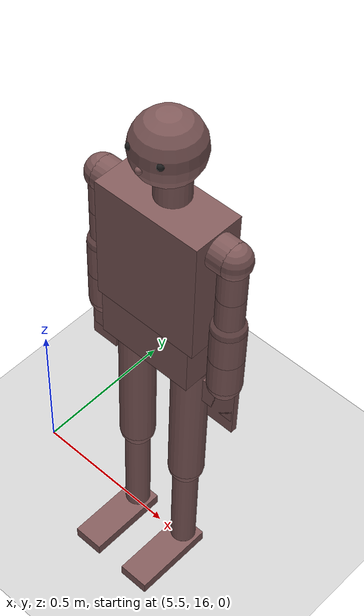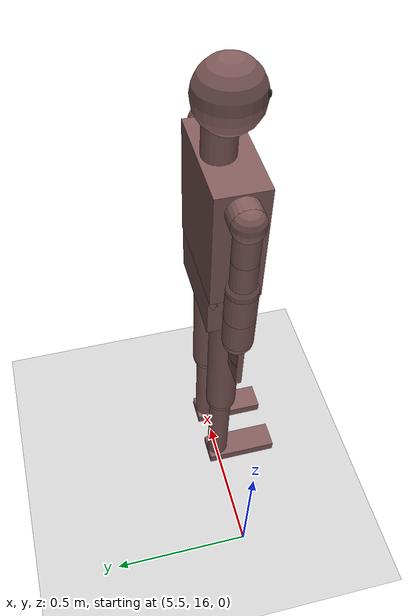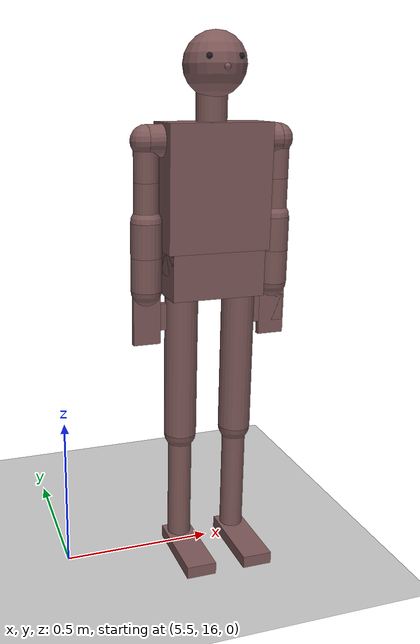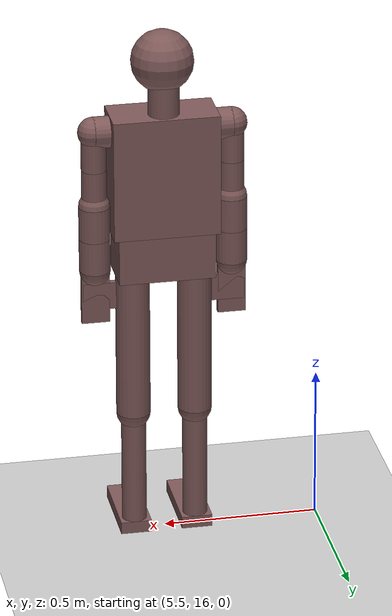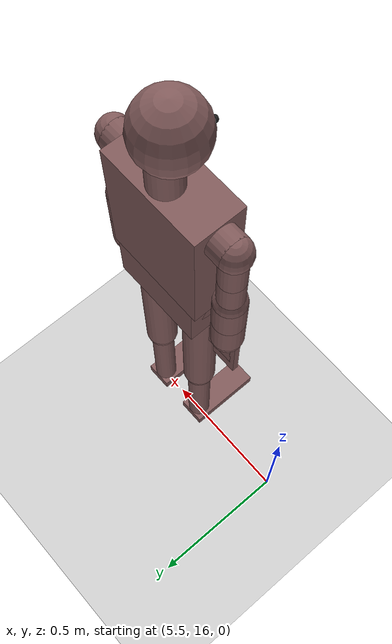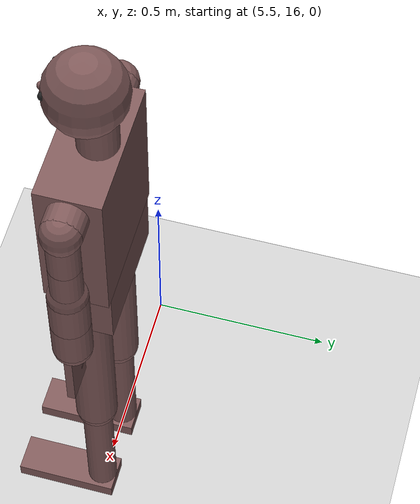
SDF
<sdf version="1.6">
 <world name="default">
  <model name="ground_plane">
   <static>1</static>
   <link name="link">
    <collision name="collision">
     <geometry><plane><normal>0 0 1</normal><size>100 100</size></plane></geometry>
     <surface><friction><ode><mu>100</mu><mu2>50</mu2></ode></friction></surface>
    </collision>
    <visual name="visual">
     <cast_shadows>0</cast_shadows>
     <geometry><plane><normal>0 0 1</normal><size>100 100</size></plane></geometry>
     <material>
      <script><uri>file://media/materials/scripts/gazebo.material</uri><name>Gazebo/Grey</name></script>
     </material>
    </visual>
   </link>
  </model>
  <model name="victim175_hot_moving_1">
   <static>1</static>
   <self_collide>1</self_collide>
   <link name="head">
    <pose>0 0 1.625 0 -0 0</pose>
    <visual name="visual">
     <geometry><sphere><radius>0.1</radius></sphere></geometry>
     <material>
      <emissive>0.5 0.35 0.35 1</emissive>
      <ambient>0.5 0.35 0.35 1</ambient>
      <diffuse>0.5 0.35 0.35 1</diffuse>
      <specular>0 0 0 0</specular>
     </material>
    </visual>
    <collision name="collision"><geometry><sphere><radius>0.1</radius></sphere></geometry></collision>
    <visual name="visual_nose">
     <pose>0 -0.1 -0.01 0 -0 0</pose>
     <geometry><sphere><radius>0.01</radius></sphere></geometry>
     <material>
      <emissive>0.5 0.35 0.35 1</emissive>
      <ambient>0.5 0.35 0.35 1</ambient>
      <diffuse>0.5 0.35 0.35 1</diffuse>
      <specular>0 0 0 0</specular>
     </material>
    </visual>
    <visual name="visual_rEye">
     <pose>-0.05 -0.08 0.02 0 -0 0</pose>
     <geometry><sphere><radius>0.01</radius></sphere></geometry>
     <material>
      <script><uri>file://media/materials/scripts/gazebo.material</uri><name>Gazebo/Black</name></script>
     </material>
    </visual>
    <visual name="visual_lEye">
     <pose>0.05 -0.08 0.02 0 -0 0</pose>
     <geometry><sphere><radius>0.01</radius></sphere></geometry>
     <material>
      <script><uri>file://media/materials/scripts/gazebo.material</uri><name>Gazebo/Black</name></script>
     </material>
    </visual>
    <self_collide>1</self_collide>
   </link>
   <link name="neck">
    <pose>0 0.02 1.49 0 -0 0</pose>
    <visual name="visual">
     <geometry><cylinder><radius>0.05</radius><length>0.15</length></cylinder></geometry>
     <material>
      <emissive>0.5 0.35 0.35 1</emissive>
      <ambient>0.5 0.35 0.35 1</ambient>
      <diffuse>0.5 0.35 0.35 1</diffuse>
      <specular>0 0 0 0</specular>
     </material>
    </visual>
    <collision name="collision">
     <geometry><cylinder><radius>0.05</radius><length>0.15</length></cylinder></geometry>
    </collision>
    <self_collide>1</self_collide>
   </link>
   <joint name="neck_head" type="revolute">
    <pose>0 0.02 -0.075 0 -0 0</pose>
    <child>head</child>
    <parent>neck</parent>
    <axis>
     <xyz>0 0 -1</xyz>
     <limit><lower>-1.7</lower><upper>1.7</upper></limit>
     <dynamics>
      <friction>0.01</friction>
      <spring_reference>0</spring_reference>
      <spring_stiffness>0</spring_stiffness>
     </dynamics>
     <use_parent_model_frame>0</use_parent_model_frame>
    </axis>
   </joint>
   <link name="body">
    <pose>0 0 1.255 0 -0 0</pose>
    <visual name="visual">
     <geometry><box><size>0.34 0.16 0.4</size></box></geometry>
     <material>
      <emissive>0.5 0.35 0.35 1</emissive>
      <ambient>0.5 0.35 0.35 1</ambient>
      <diffuse>0.5 0.35 0.35 1</diffuse>
      <specular>0 0 0 0</specular>
     </material>
    </visual>
    <collision name="collision"><geometry><box><size>0.34 0.16 0.4</size></box></geometry></collision>
    <self_collide>1</self_collide>
   </link>
   <joint name="body_neck" type="revolute">
    <pose>0 0.06 -0.075 0 -0 0</pose>
    <child>neck</child>
    <parent>body</parent>
    <axis>
     <xyz>1 0 0</xyz>
     <limit><lower>-0.2</lower><upper>1</upper></limit>
     <dynamics>
      <friction>0.01</friction>
      <spring_reference>0</spring_reference>
      <spring_stiffness>0</spring_stiffness>
     </dynamics>
     <use_parent_model_frame>0</use_parent_model_frame>
    </axis>
   </joint>
   <link name="waist">
    <pose>0 0 1.005 0 -0 0</pose>
    <visual name="visual">
     <pose>0 0 -0.025 0 -0 0</pose>
     <geometry><box><size>0.31 0.16 0.15</size></box></geometry>
     <material>
      <emissive>0.5 0.35 0.35 1</emissive>
      <ambient>0.5 0.35 0.35 1</ambient>
      <diffuse>0.5 0.35 0.35 1</diffuse>
      <specular>0 0 0 0</specular>
     </material>
    </visual>
    <collision name="collision"><geometry><box><size>0.31 0.16 0.1</size></box></geometry></collision>
    <visual name="visual2">
     <pose>0 0 0.05 3.14159 1.57079 3.14159</pose>
     <geometry><cylinder><radius>0.08</radius><length>0.31</length></cylinder></geometry>
     <material>
      <emissive>0.5 0.35 0.35 1</emissive>
      <ambient>0.5 0.35 0.35 1</ambient>
      <diffuse>0.5 0.35 0.35 1</diffuse>
      <specular>0 0 0 0</specular>
     </material>
    </visual>
    <collision name="collision2">
     <pose>0 0 0.05 3.14159 1.57079 3.14159</pose>
     <geometry><cylinder><radius>0.08</radius><length>0.31</length></cylinder></geometry>
    </collision>
    <self_collide>1</self_collide>
   </link>
   <joint name="body_waist" type="revolute">
    <pose>0 0 0.05 0 -0 0</pose>
    <child>waist</child>
    <parent>body</parent>
    <axis>
     <xyz>-1 0 0</xyz>
     <limit><lower>0</lower><upper>0</upper></limit>
     <dynamics>
      <friction>0.01</friction>
      <spring_reference>0</spring_reference>
      <spring_stiffness>0</spring_stiffness>
     </dynamics>
     <use_parent_model_frame>0</use_parent_model_frame>
    </axis>
   </joint>
   <link name="rHand">
    <pose>-0.22 0 0.84 0 -0 0</pose>
    <visual name="visual">
     <geometry><box><size>0.09 0.02 0.18</size></box></geometry>
     <material>
      <emissive>0.5 0.35 0.35 1</emissive>
      <ambient>0.5 0.35 0.35 1</ambient>
      <diffuse>0.5 0.35 0.35 1</diffuse>
      <specular>0 0 0 0</specular>
     </material>
    </visual>
    <collision name="collision"><geometry><box><size>0.09 0.02 0.18</size></box></geometry></collision>
    <visual name="visual2">
     <pose>0.02 0 0 0 -0 0</pose>
     <geometry><box><size>0.12 0.02 0.09</size></box></geometry>
     <material>
      <emissive>0.5 0.35 0.35 1</emissive>
      <ambient>0.5 0.35 0.35 1</ambient>
      <diffuse>0.5 0.35 0.35 1</diffuse>
      <specular>0 0 0 0</specular>
     </material>
    </visual>
    <collision name="collision2">
     <pose>0.02 0 0 0 -0 0</pose>
     <geometry><box><size>0.12 0.02 0.09</size></box></geometry>
    </collision>
    <self_collide>1</self_collide>
   </link>
   <link name="lHand">
    <pose>0.22 0 0.84 0 -0 0</pose>
    <visual name="visual">
     <geometry><box><size>0.09 0.02 0.18</size></box></geometry>
     <material>
      <emissive>0.5 0.35 0.35 1</emissive>
      <ambient>0.5 0.35 0.35 1</ambient>
      <diffuse>0.5 0.35 0.35 1</diffuse>
      <specular>0 0 0 0</specular>
     </material>
    </visual>
    <collision name="collision"><geometry><box><size>0.09 0.02 0.18</size></box></geometry></collision>
    <visual name="visual2">
     <pose>-0.02 0 0 0 -0 0</pose>
     <geometry><box><size>0.12 0.02 0.09</size></box></geometry>
     <material>
      <emissive>0.5 0.35 0.35 1</emissive>
      <ambient>0.5 0.35 0.35 1</ambient>
      <diffuse>0.5 0.35 0.35 1</diffuse>
      <specular>0 0 0 0</specular>
     </material>
    </visual>
    <collision name="collision2">
     <pose>-0.02 0 0 0 -0 0</pose>
     <geometry><box><size>0.12 0.02 0.09</size></box></geometry>
    </collision>
    <self_collide>1</self_collide>
   </link>
   <link name="rFoot">
    <pose>-0.1 -0.095 0.02 0 -0 0</pose>
    <visual name="visual">
     <geometry><box><size>0.1 0.27 0.04</size></box></geometry>
     <material>
      <emissive>0.5 0.35 0.35 1</emissive>
      <ambient>0.5 0.35 0.35 1</ambient>
      <diffuse>0.5 0.35 0.35 1</diffuse>
      <specular>0 0 0 0</specular>
     </material>
    </visual>
    <collision name="collision"><geometry><box><size>0.1 0.27 0.04</size></box></geometry></collision>
    <self_collide>1</self_collide>
   </link>
   <link name="lFoot">
    <pose>0.1 -0.095 0.02 0 -0 0</pose>
    <visual name="visual">
     <geometry><box><size>0.1 0.27 0.04</size></box></geometry>
     <material>
      <emissive>0.5 0.35 0.35 1</emissive>
      <ambient>0.5 0.35 0.35 1</ambient>
      <diffuse>0.5 0.35 0.35 1</diffuse>
      <specular>0 0 0 0</specular>
     </material>
    </visual>
    <collision name="collision"><geometry><box><size>0.1 0.27 0.04</size></box></geometry></collision>
    <self_collide>1</self_collide>
   </link>
   <link name="rLeg2">
    <pose>-0.1 0 0.23 0 -0 0</pose>
    <visual name="visual">
     <geometry><cylinder><radius>0.04</radius><length>0.38</length></cylinder></geometry>
     <material>
      <emissive>0.5 0.35 0.35 1</emissive>
      <ambient>0.5 0.35 0.35 1</ambient>
      <diffuse>0.5 0.35 0.35 1</diffuse>
      <specular>0 0 0 0</specular>
     </material>
    </visual>
    <collision name="collision">
     <geometry><cylinder><radius>0.04</radius><length>0.38</length></cylinder></geometry>
    </collision>
    <visual name="visual2">
     <pose>0 0 -0.19 0 -0 0</pose>
     <geometry><sphere><radius>0.04</radius></sphere></geometry>
     <material>
      <emissive>0.5 0.35 0.35 1</emissive>
      <ambient>0.5 0.35 0.35 1</ambient>
      <diffuse>0.5 0.35 0.35 1</diffuse>
      <specular>0 0 0 0</specular>
     </material>
    </visual>
    <collision name="collision2">
     <pose>0 0 -0.19 0 -0 0</pose>
     <geometry><sphere><radius>0.04</radius></sphere></geometry>
    </collision>
    <self_collide>1</self_collide>
   </link>
   <link name="lLeg2">
    <pose>0.1 0 0.23 0 -0 0</pose>
    <visual name="visual">
     <geometry><cylinder><radius>0.04</radius><length>0.38</length></cylinder></geometry>
     <material>
      <emissive>0.5 0.35 0.35 1</emissive>
      <ambient>0.5 0.35 0.35 1</ambient>
      <diffuse>0.5 0.35 0.35 1</diffuse>
      <specular>0 0 0 0</specular>
     </material>
    </visual>
    <collision name="collision">
     <geometry><cylinder><radius>0.04</radius><length>0.38</length></cylinder></geometry>
    </collision>
    <visual name="visual2">
     <pose>0 0 -0.19 0 -0 0</pose>
     <geometry><sphere><radius>0.04</radius></sphere></geometry>
     <material>
      <emissive>0.5 0.35 0.35 1</emissive>
      <ambient>0.5 0.35 0.35 1</ambient>
      <diffuse>0.5 0.35 0.35 1</diffuse>
      <specular>0 0 0 0</specular>
     </material>
    </visual>
    <collision name="collision2">
     <pose>0 0 -0.19 0 -0 0</pose>
     <geometry><sphere><radius>0.04</radius></sphere></geometry>
    </collision>
    <self_collide>1</self_collide>
   </link>
   <joint name="rLeg2_rFoot" type="revolute">
    <pose>0 0.095 0.02 0 -0 0</pose>
    <child>rFoot</child>
    <parent>rLeg2</parent>
    <axis>
     <xyz>1 0 0</xyz>
     <limit><lower>0</lower><upper>0</upper></limit>
     <dynamics>
      <friction>0.01</friction>
      <spring_reference>0</spring_reference>
      <spring_stiffness>0</spring_stiffness>
     </dynamics>
     <use_parent_model_frame>0</use_parent_model_frame>
    </axis>
   </joint>
   <joint name="lLeg2_lFoot" type="revolute">
    <pose>0 0.095 0.02 0 -0 0</pose>
    <child>lFoot</child>
    <parent>lLeg2</parent>
    <axis>
     <xyz>1 0 0</xyz>
     <limit><lower>0</lower><upper>0</upper></limit>
     <dynamics>
      <friction>0.01</friction>
      <spring_reference>0</spring_reference>
      <spring_stiffness>0</spring_stiffness>
     </dynamics>
     <use_parent_model_frame>0</use_parent_model_frame>
    </axis>
   </joint>
   <link name="rLeg1">
    <pose>-0.1 0 0.66 0 -0 0</pose>
    <visual name="visual">
     <geometry><cylinder><radius>0.055</radius><length>0.48</length></cylinder></geometry>
     <material>
      <emissive>0.5 0.35 0.35 1</emissive>
      <ambient>0.5 0.35 0.35 1</ambient>
      <diffuse>0.5 0.35 0.35 1</diffuse>
      <specular>0 0 0 0</specular>
     </material>
    </visual>
    <collision name="collision">
     <geometry><cylinder><radius>0.055</radius><length>0.48</length></cylinder></geometry>
    </collision>
    <visual name="visual2">
     <pose>0 0 -0.24 0 -0 0</pose>
     <geometry><sphere><radius>0.055</radius></sphere></geometry>
     <material>
      <emissive>0.5 0.35 0.35 1</emissive>
      <ambient>0.5 0.35 0.35 1</ambient>
      <diffuse>0.5 0.35 0.35 1</diffuse>
      <specular>0 0 0 0</specular>
     </material>
    </visual>
    <collision name="collision2">
     <pose>0 0 -0.24 0 -0 0</pose>
     <geometry><sphere><radius>0.055</radius></sphere></geometry>
    </collision>
    <visual name="visual3">
     <pose>0 0 0.24 0 -0 0</pose>
     <geometry><sphere><radius>0.055</radius></sphere></geometry>
     <material>
      <emissive>0.5 0.35 0.35 1</emissive>
      <ambient>0.5 0.35 0.35 1</ambient>
      <diffuse>0.5 0.35 0.35 1</diffuse>
      <specular>0 0 0 0</specular>
     </material>
    </visual>
    <collision name="collision3">
     <pose>0 0 0.24 0 -0 0</pose>
     <geometry><sphere><radius>0.055</radius></sphere></geometry>
    </collision>
    <self_collide>1</self_collide>
   </link>
   <link name="lLeg1">
    <pose>0.1 0 0.66 0 -0 0</pose>
    <visual name="visual">
     <geometry><cylinder><radius>0.055</radius><length>0.48</length></cylinder></geometry>
     <material>
      <emissive>0.5 0.35 0.35 1</emissive>
      <ambient>0.5 0.35 0.35 1</ambient>
      <diffuse>0.5 0.35 0.35 1</diffuse>
      <specular>0 0 0 0</specular>
     </material>
    </visual>
    <collision name="collision">
     <geometry><cylinder><radius>0.055</radius><length>0.48</length></cylinder></geometry>
    </collision>
    <visual name="visual2">
     <pose>0 0 -0.24 0 -0 0</pose>
     <geometry><sphere><radius>0.055</radius></sphere></geometry>
     <material>
      <emissive>0.5 0.35 0.35 1</emissive>
      <ambient>0.5 0.35 0.35 1</ambient>
      <diffuse>0.5 0.35 0.35 1</diffuse>
      <specular>0 0 0 0</specular>
     </material>
    </visual>
    <collision name="collision2">
     <pose>0 0 -0.24 0 -0 0</pose>
     <geometry><sphere><radius>0.055</radius></sphere></geometry>
    </collision>
    <visual name="visual3">
     <pose>0 0 0.24 0 -0 0</pose>
     <geometry><sphere><radius>0.055</radius></sphere></geometry>
     <material>
      <emissive>0.5 0.35 0.35 1</emissive>
      <ambient>0.5 0.35 0.35 1</ambient>
      <diffuse>0.5 0.35 0.35 1</diffuse>
      <specular>0 0 0 0</specular>
     </material>
    </visual>
    <collision name="collision3">
     <pose>0 0 0.24 0 -0 0</pose>
     <geometry><sphere><radius>0.055</radius></sphere></geometry>
    </collision>
    <self_collide>1</self_collide>
   </link>
   <joint name="rLeg1_rLeg2" type="revolute">
    <pose>0 0 0.19 0 -0 0</pose>
    <child>rLeg2</child>
    <parent>rLeg1</parent>
    <axis>
     <xyz>1 0 0</xyz>
     <limit><lower>0</lower><upper>0</upper></limit>
     <dynamics>
      <friction>0.01</friction>
      <spring_reference>0</spring_reference>
      <spring_stiffness>0</spring_stiffness>
     </dynamics>
     <use_parent_model_frame>0</use_parent_model_frame>
    </axis>
   </joint>
   <joint name="lLeg1_lLeg2" type="revolute">
    <pose>0 0 0.19 0 -0 0</pose>
    <child>lLeg2</child>
    <parent>lLeg1</parent>
    <axis>
     <xyz>1 0 0</xyz>
     <limit><lower>0</lower><upper>0</upper></limit>
     <dynamics>
      <friction>0.01</friction>
      <spring_reference>0</spring_reference>
      <spring_stiffness>0</spring_stiffness>
     </dynamics>
     <use_parent_model_frame>0</use_parent_model_frame>
    </axis>
   </joint>
   <link name="rButt">
    <pose>-0.1 0 0.9275 0 -0 0</pose>
    <visual name="visual">
     <geometry><cylinder><radius>0.055</radius><length>0.055</length></cylinder></geometry>
     <material>
      <emissive>0.5 0.35 0.35 1</emissive>
      <ambient>0.5 0.35 0.35 1</ambient>
      <diffuse>0.5 0.35 0.35 1</diffuse>
      <specular>0 0 0 0</specular>
     </material>
    </visual>
    <collision name="collision">
     <geometry><cylinder><radius>0.055</radius><length>0.055</length></cylinder></geometry>
    </collision>
    <self_collide>1</self_collide>
   </link>
   <link name="lButt">
    <pose>0.1 0 0.9275 0 -0 0</pose>
    <visual name="visual">
     <geometry><cylinder><radius>0.055</radius><length>0.055</length></cylinder></geometry>
     <material>
      <emissive>0.5 0.35 0.35 1</emissive>
      <ambient>0.5 0.35 0.35 1</ambient>
      <diffuse>0.5 0.35 0.35 1</diffuse>
      <specular>0 0 0 0</specular>
     </material>
    </visual>
    <collision name="collision">
     <geometry><cylinder><radius>0.055</radius><length>0.055</length></cylinder></geometry>
    </collision>
    <self_collide>1</self_collide>
   </link>
   <joint name="rButt_rLeg1" type="revolute">
    <pose>0 0 0.24 0 -0 0</pose>
    <child>rLeg1</child>
    <parent>rButt</parent>
    <axis>
     <xyz>1 0 0</xyz>
     <limit><lower>0</lower><upper>0</upper></limit>
     <dynamics>
      <friction>0.01</friction>
      <spring_reference>0</spring_reference>
      <spring_stiffness>0</spring_stiffness>
     </dynamics>
     <use_parent_model_frame>0</use_parent_model_frame>
    </axis>
   </joint>
   <joint name="lButt_lLeg1" type="revolute">
    <pose>0 0 0.24 0 -0 0</pose>
    <child>lLeg1</child>
    <parent>lButt</parent>
    <axis>
     <xyz>1 0 0</xyz>
     <limit><lower>0</lower><upper>0</upper></limit>
     <dynamics>
      <friction>0.01</friction>
      <spring_reference>0</spring_reference>
      <spring_stiffness>0</spring_stiffness>
     </dynamics>
     <use_parent_model_frame>0</use_parent_model_frame>
    </axis>
   </joint>
   <joint name="waist_rButt" type="revolute">
    <child>rButt</child>
    <parent>waist</parent>
    <axis>
     <xyz>0 0 -1</xyz>
     <limit><lower>-1</lower><upper>1</upper></limit>
     <dynamics>
      <friction>0.01</friction>
      <spring_reference>0</spring_reference>
      <spring_stiffness>0</spring_stiffness>
     </dynamics>
     <use_parent_model_frame>0</use_parent_model_frame>
    </axis>
   </joint>
   <joint name="waist_lButt" type="revolute">
    <child>lButt</child>
    <parent>waist</parent>
    <axis>
     <xyz>0 0 1</xyz>
     <limit><lower>-1</lower><upper>1</upper></limit>
     <dynamics>
      <friction>0.01</friction>
      <spring_reference>0</spring_reference>
      <spring_stiffness>0</spring_stiffness>
     </dynamics>
     <use_parent_model_frame>0</use_parent_model_frame>
    </axis>
   </joint>
   <link name="rShoulder">
    <pose>-0.195 0 1.4 0 -0 0</pose>
    <visual name="visual">
     <pose>0 0 0 3.14159 1.57079 3.14159</pose>
     <geometry><cylinder><radius>0.05</radius><length>0.05</length></cylinder></geometry>
     <material>
      <emissive>0.5 0.35 0.35 1</emissive>
      <ambient>0.5 0.35 0.35 1</ambient>
      <diffuse>0.5 0.35 0.35 1</diffuse>
      <specular>0 0 0 0</specular>
     </material>
    </visual>
    <collision name="collision">
     <pose>0 0 0 3.14159 1.57079 3.14159</pose>
     <geometry><cylinder><radius>0.05</radius><length>0.05</length></cylinder></geometry>
    </collision>
    <self_collide>1</self_collide>
   </link>
   <link name="lShoulder">
    <pose>0.195 0 1.4 0 -0 0</pose>
    <visual name="visual">
     <pose>0 0 0 3.14159 1.57079 3.14159</pose>
     <geometry><cylinder><radius>0.05</radius><length>0.05</length></cylinder></geometry>
     <material>
      <emissive>0.5 0.35 0.35 1</emissive>
      <ambient>0.5 0.35 0.35 1</ambient>
      <diffuse>0.5 0.35 0.35 1</diffuse>
      <specular>0 0 0 0</specular>
     </material>
    </visual>
    <collision name="collision">
     <pose>0 0 0 3.14159 1.57079 3.14159</pose>
     <geometry><cylinder><radius>0.05</radius><length>0.05</length></cylinder></geometry>
    </collision>
    <self_collide>1</self_collide>
   </link>
   <joint name="body_rShoulder" type="revolute">
    <child>rShoulder</child>
    <parent>body</parent>
    <axis>
     <xyz>-1 0 0</xyz>
     <limit><lower>-1.5708</lower><upper>3.2</upper></limit>
     <dynamics>
      <friction>0.01</friction>
      <spring_reference>0</spring_reference>
      <spring_stiffness>0</spring_stiffness>
     </dynamics>
     <use_parent_model_frame>0</use_parent_model_frame>
    </axis>
   </joint>
   <joint name="body_lShoulder" type="revolute">
    <child>lShoulder</child>
    <parent>body</parent>
    <axis>
     <xyz>1 0 0</xyz>
     <limit><lower>-1.5708</lower><upper>3.2</upper></limit>
     <dynamics>
      <friction>0.01</friction>
      <spring_reference>0</spring_reference>
      <spring_stiffness>0</spring_stiffness>
     </dynamics>
     <use_parent_model_frame>0</use_parent_model_frame>
    </axis>
   </joint>
   <link name="rArm1U">
    <pose>-0.22 0 1.3375 0 -0 0</pose>
    <visual name="visual">
     <geometry><cylinder><radius>0.04</radius><length>0.125</length></cylinder></geometry>
     <material>
      <emissive>0.5 0.35 0.35 1</emissive>
      <ambient>0.5 0.35 0.35 1</ambient>
      <diffuse>0.5 0.35 0.35 1</diffuse>
      <specular>0 0 0 0</specular>
     </material>
    </visual>
    <collision name="collision">
     <geometry><cylinder><radius>0.04</radius><length>0.125</length></cylinder></geometry>
    </collision>
    <visual name="visual2">
     <pose>0 0 0.0625 0 -0 0</pose>
     <geometry><sphere><radius>0.05</radius></sphere></geometry>
     <material>
      <emissive>0.5 0.35 0.35 1</emissive>
      <ambient>0.5 0.35 0.35 1</ambient>
      <diffuse>0.5 0.35 0.35 1</diffuse>
      <specular>0 0 0 0</specular>
     </material>
    </visual>
    <collision name="collision2">
     <pose>0 0 0.0625 0 -0 0</pose>
     <geometry><sphere><radius>0.05</radius></sphere></geometry>
    </collision>
    <self_collide>1</self_collide>
   </link>
   <link name="rArm1L">
    <pose>-0.22 0 1.2125 0 -0 0</pose>
    <visual name="visual">
     <geometry><cylinder><radius>0.04</radius><length>0.125</length></cylinder></geometry>
     <material>
      <emissive>0.5 0.35 0.35 1</emissive>
      <ambient>0.5 0.35 0.35 1</ambient>
      <diffuse>0.5 0.35 0.35 1</diffuse>
      <specular>0 0 0 0</specular>
     </material>
    </visual>
    <collision name="collision">
     <geometry><cylinder><radius>0.04</radius><length>0.125</length></cylinder></geometry>
    </collision>
    <visual name="visual2">
     <pose>0 0 -0.0625 0 -0 0</pose>
     <geometry><sphere><radius>0.05</radius></sphere></geometry>
     <material>
      <emissive>0.5 0.35 0.35 1</emissive>
      <ambient>0.5 0.35 0.35 1</ambient>
      <diffuse>0.5 0.35 0.35 1</diffuse>
      <specular>0 0 0 0</specular>
     </material>
    </visual>
    <collision name="collision2">
     <pose>0 0 -0.0625 0 -0 0</pose>
     <geometry><sphere><radius>0.05</radius></sphere></geometry>
    </collision>
    <self_collide>1</self_collide>
   </link>
   <joint name="rArm1U_rArm1L" type="revolute">
    <pose>0 0 0.0625 0 -0 0</pose>
    <child>rArm1L</child>
    <parent>rArm1U</parent>
    <axis>
     <xyz>0 0 -1</xyz>
     <limit><lower>-1.5708</lower><upper>1.5708</upper></limit>
     <dynamics>
      <friction>0.01</friction>
      <spring_reference>0</spring_reference>
      <spring_stiffness>0</spring_stiffness>
     </dynamics>
     <use_parent_model_frame>0</use_parent_model_frame>
    </axis>
   </joint>
   <link name="lArm1U">
    <pose>0.22 0 1.3375 0 -0 0</pose>
    <visual name="visual">
     <geometry><cylinder><radius>0.04</radius><length>0.125</length></cylinder></geometry>
     <material>
      <emissive>0.5 0.35 0.35 1</emissive>
      <ambient>0.5 0.35 0.35 1</ambient>
      <diffuse>0.5 0.35 0.35 1</diffuse>
      <specular>0 0 0 0</specular>
     </material>
    </visual>
    <collision name="collision">
     <geometry><cylinder><radius>0.04</radius><length>0.125</length></cylinder></geometry>
    </collision>
    <visual name="visual2">
     <pose>0 0 0.0625 0 -0 0</pose>
     <geometry><sphere><radius>0.05</radius></sphere></geometry>
     <material>
      <emissive>0.5 0.35 0.35 1</emissive>
      <ambient>0.5 0.35 0.35 1</ambient>
      <diffuse>0.5 0.35 0.35 1</diffuse>
      <specular>0 0 0 0</specular>
     </material>
    </visual>
    <collision name="collision2">
     <pose>0 0 0.0625 0 -0 0</pose>
     <geometry><sphere><radius>0.05</radius></sphere></geometry>
    </collision>
    <self_collide>1</self_collide>
   </link>
   <link name="lArm1L">
    <pose>0.22 0 1.2125 0 -0 0</pose>
    <visual name="visual">
     <geometry><cylinder><radius>0.04</radius><length>0.125</length></cylinder></geometry>
     <material>
      <emissive>0.5 0.35 0.35 1</emissive>
      <ambient>0.5 0.35 0.35 1</ambient>
      <diffuse>0.5 0.35 0.35 1</diffuse>
      <specular>0 0 0 0</specular>
     </material>
    </visual>
    <collision name="collision">
     <geometry><cylinder><radius>0.04</radius><length>0.125</length></cylinder></geometry>
    </collision>
    <visual name="visual2">
     <pose>0 0 -0.0625 0 -0 0</pose>
     <geometry><sphere><radius>0.05</radius></sphere></geometry>
     <material>
      <emissive>0.5 0.35 0.35 1</emissive>
      <ambient>0.5 0.35 0.35 1</ambient>
      <diffuse>0.5 0.35 0.35 1</diffuse>
      <specular>0 0 0 0</specular>
     </material>
    </visual>
    <collision name="collision2">
     <pose>0 0 -0.0625 0 -0 0</pose>
     <geometry><sphere><radius>0.05</radius></sphere></geometry>
    </collision>
    <self_collide>1</self_collide>
   </link>
   <joint name="lArm1U_lArm1L" type="revolute">
    <pose>0 0 0.0625 0 -0 0</pose>
    <child>lArm1L</child>
    <parent>lArm1U</parent>
    <axis>
     <xyz>0 0 1</xyz>
     <limit><lower>-1.5708</lower><upper>1.5708</upper></limit>
     <dynamics>
      <friction>0.01</friction>
      <spring_reference>0</spring_reference>
      <spring_stiffness>0</spring_stiffness>
     </dynamics>
     <use_parent_model_frame>0</use_parent_model_frame>
    </axis>
   </joint>
   <joint name="rShoulder_rArm1" type="revolute">
    <pose>0 0 0.0625 0 -0 0</pose>
    <child>rArm1U</child>
    <parent>rShoulder</parent>
    <axis>
     <xyz>0 -1 0</xyz>
     <limit><lower>-1.5708</lower><upper>3.2</upper></limit>
     <dynamics>
      <friction>0.01</friction>
      <spring_reference>0</spring_reference>
      <spring_stiffness>0</spring_stiffness>
     </dynamics>
     <use_parent_model_frame>0</use_parent_model_frame>
    </axis>
   </joint>
   <joint name="lShoulder_lArm1" type="revolute">
    <pose>0 0 0.0625 0 -0 0</pose>
    <child>lArm1U</child>
    <parent>lShoulder</parent>
    <axis>
     <xyz>0 1 0</xyz>
     <limit><lower>-1.5708</lower><upper>3.2</upper></limit>
     <dynamics>
      <friction>0.01</friction>
      <spring_reference>0</spring_reference>
      <spring_stiffness>0</spring_stiffness>
     </dynamics>
     <use_parent_model_frame>0</use_parent_model_frame>
    </axis>
   </joint>
   <link name="rArm2U">
    <pose>-0.22 0 1.095 0 -0 0</pose>
    <visual name="visual">
     <geometry><cylinder><radius>0.05</radius><length>0.11</length></cylinder></geometry>
     <material>
      <emissive>0.5 0.35 0.35 1</emissive>
      <ambient>0.5 0.35 0.35 1</ambient>
      <diffuse>0.5 0.35 0.35 1</diffuse>
      <specular>0 0 0 0</specular>
     </material>
    </visual>
    <collision name="collision">
     <geometry><cylinder><radius>0.05</radius><length>0.11</length></cylinder></geometry>
    </collision>
    <self_collide>1</self_collide>
   </link>
   <link name="rArm2L">
    <pose>-0.22 0 0.985 0 -0 0</pose>
    <visual name="visual">
     <geometry><cylinder><radius>0.05</radius><length>0.11</length></cylinder></geometry>
     <material>
      <emissive>0.5 0.35 0.35 1</emissive>
      <ambient>0.5 0.35 0.35 1</ambient>
      <diffuse>0.5 0.35 0.35 1</diffuse>
      <specular>0 0 0 0</specular>
     </material>
    </visual>
    <collision name="collision">
     <geometry><cylinder><radius>0.05</radius><length>0.11</length></cylinder></geometry>
    </collision>
    <visual name="visual2">
     <pose>0 0 -0.055 0 -0 0</pose>
     <geometry><sphere><radius>0.05</radius></sphere></geometry>
     <material>
      <emissive>0.5 0.35 0.35 1</emissive>
      <ambient>0.5 0.35 0.35 1</ambient>
      <diffuse>0.5 0.35 0.35 1</diffuse>
      <specular>0 0 0 0</specular>
     </material>
    </visual>
    <collision name="collision2">
     <pose>0 0 -0.055 0 -0 0</pose>
     <geometry><sphere><radius>0.05</radius></sphere></geometry>
    </collision>
    <self_collide>1</self_collide>
   </link>
   <joint name="rArm2U_rArm2L" type="revolute">
    <pose>0 0 0.055 0 -0 0</pose>
    <child>rArm2L</child>
    <parent>rArm2U</parent>
    <axis>
     <xyz>0 0 -1</xyz>
     <limit><lower>-1.5708</lower><upper>1.5708</upper></limit>
     <dynamics>
      <friction>0.01</friction>
      <spring_reference>0</spring_reference>
      <spring_stiffness>0</spring_stiffness>
     </dynamics>
     <use_parent_model_frame>0</use_parent_model_frame>
    </axis>
   </joint>
   <link name="lArm2U">
    <pose>0.22 0 1.095 0 -0 0</pose>
    <visual name="visual">
     <geometry><cylinder><radius>0.05</radius><length>0.11</length></cylinder></geometry>
     <material>
      <emissive>0.5 0.35 0.35 1</emissive>
      <ambient>0.5 0.35 0.35 1</ambient>
      <diffuse>0.5 0.35 0.35 1</diffuse>
      <specular>0 0 0 0</specular>
     </material>
    </visual>
    <collision name="collision">
     <geometry><cylinder><radius>0.05</radius><length>0.11</length></cylinder></geometry>
    </collision>
    <self_collide>1</self_collide>
   </link>
   <link name="lArm2L">
    <pose>0.22 0 0.985 0 -0 0</pose>
    <visual name="visual">
     <geometry><cylinder><radius>0.05</radius><length>0.11</length></cylinder></geometry>
     <material>
      <emissive>0.5 0.35 0.35 1</emissive>
      <ambient>0.5 0.35 0.35 1</ambient>
      <diffuse>0.5 0.35 0.35 1</diffuse>
      <specular>0 0 0 0</specular>
     </material>
    </visual>
    <collision name="collision">
     <geometry><cylinder><radius>0.05</radius><length>0.11</length></cylinder></geometry>
    </collision>
    <visual name="visual2">
     <pose>0 0 -0.055 0 -0 0</pose>
     <geometry><sphere><radius>0.05</radius></sphere></geometry>
     <material>
      <emissive>0.5 0.35 0.35 1</emissive>
      <ambient>0.5 0.35 0.35 1</ambient>
      <diffuse>0.5 0.35 0.35 1</diffuse>
      <specular>0 0 0 0</specular>
     </material>
    </visual>
    <collision name="collision2">
     <pose>0 0 -0.055 0 -0 0</pose>
     <geometry><sphere><radius>0.05</radius></sphere></geometry>
    </collision>
    <self_collide>1</self_collide>
   </link>
   <joint name="lArm2U_lArm2L" type="revolute">
    <pose>0 0 0.055 0 -0 0</pose>
    <child>lArm2L</child>
    <parent>lArm2U</parent>
    <axis>
     <xyz>0 0 1</xyz>
     <limit><lower>-1.5708</lower><upper>1.5708</upper></limit>
     <dynamics>
      <friction>0.01</friction>
      <spring_reference>0</spring_reference>
      <spring_stiffness>0</spring_stiffness>
     </dynamics>
     <use_parent_model_frame>0</use_parent_model_frame>
    </axis>
   </joint>
   <joint name="rArm1_rArm2" type="revolute">
    <pose>0 0 0.055 0 -0 0</pose>
    <child>rArm2U</child>
    <parent>rArm1L</parent>
    <axis>
     <xyz>-1 0 0</xyz>
     <limit><lower>0</lower><upper>2.8</upper></limit>
     <dynamics>
      <friction>0.01</friction>
      <spring_reference>0</spring_reference>
      <spring_stiffness>0</spring_stiffness>
     </dynamics>
     <use_parent_model_frame>0</use_parent_model_frame>
    </axis>
   </joint>
   <joint name="lArm1_lArm2" type="revolute">
    <pose>0 0 0.055 0 -0 0</pose>
    <child>lArm2U</child>
    <parent>lArm1L</parent>
    <axis>
     <xyz>-1 0 0</xyz>
     <limit><lower>0</lower><upper>2.8</upper></limit>
     <dynamics>
      <friction>0.01</friction>
      <spring_reference>0</spring_reference>
      <spring_stiffness>0</spring_stiffness>
     </dynamics>
     <use_parent_model_frame>0</use_parent_model_frame>
    </axis>
   </joint>
   <joint name="rArm2_rHand" type="revolute">
    <pose>0 0 0.09 0 -0 0</pose>
    <child>rHand</child>
    <parent>rArm2L</parent>
    <axis>
     <xyz>-1 0 0</xyz>
     <limit><lower>-1.57</lower><upper>1.4</upper></limit>
     <dynamics>
      <friction>0.01</friction>
      <spring_reference>0</spring_reference>
      <spring_stiffness>0</spring_stiffness>
     </dynamics>
     <use_parent_model_frame>0</use_parent_model_frame>
    </axis>
   </joint>
   <joint name="lArm2_lHand" type="revolute">
    <pose>0 0 0.09 0 -0 0</pose>
    <child>lHand</child>
    <parent>lArm2L</parent>
    <axis>
     <xyz>-1 0 0</xyz>
     <limit><lower>-1.57</lower><upper>1.4</upper></limit>
     <dynamics>
      <friction>0.01</friction>
      <spring_reference>0</spring_reference>
      <spring_stiffness>0</spring_stiffness>
     </dynamics>
     <use_parent_model_frame>0</use_parent_model_frame>
    </axis>
   </joint>
   <joint name="world_rFoot" type="revolute">
    <child>rFoot</child>
    <parent>world</parent>
    <axis>
     <xyz>0 0 1</xyz>
     <limit><lower>0</lower><upper>0</upper></limit>
     <use_parent_model_frame>0</use_parent_model_frame>
     <dynamics><spring_reference>0</spring_reference><spring_stiffness>0</spring_stiffness></dynamics>
    </axis>
   </joint>
   <joint name="world_lFoot" type="revolute">
    <child>lFoot</child>
    <parent>world</parent>
    <axis>
     <xyz>0 0 1</xyz>
     <limit><lower>0</lower><upper>0</upper></limit>
     <use_parent_model_frame>0</use_parent_model_frame>
     <dynamics><spring_reference>0</spring_reference><spring_stiffness>0</spring_stiffness></dynamics>
    </axis>
   </joint>
   <pose>6 16 0 0 -0 0</pose>
  </model>
 </world>
</sdf>
